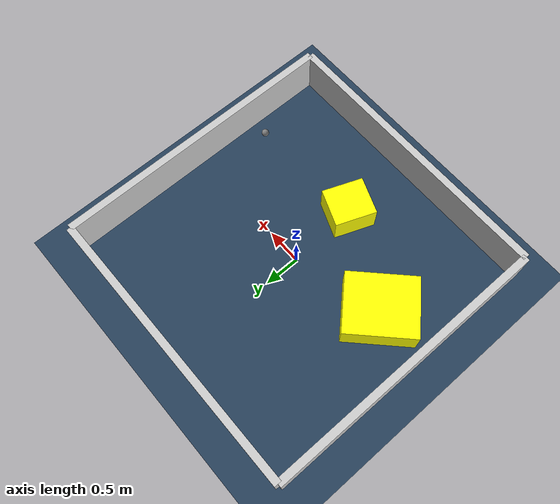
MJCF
<?xml version="1.0" ?>
<mujoco model="generated_environment">
  <option timestep="0.01" integrator="RK4" cone="elliptic"/>
  <default>
    <geom density="1"/>
  </default>
  <asset>
    <texture builtin="gradient" height="3072" rgb1="0.3 0.5 0.7" rgb2="0 0 0" type="skybox" width="512"/>
    <texture builtin="checker" height="300" mark="edge" markrgb="0.8 0.8 0.8" name="groundplane" rgb1="0.2 0.3 0.4" rgb2="0.1 0.2 0.3" type="2d" width="300"/>
    <material name="groundplane" reflectance="0.2" texrepeat="5 5" texture="groundplane" texuniform="true"/>
    <material name="robot" rgba="0.0 1.0 0.0 1"/>
  </asset>
  <worldbody>
    <light dir="0 0 -1" directional="true" pos="0 0 1.5"/>
    <geom condim="4" friction="1.0 0.005 0.001" material="groundplane" name="floor" size="0 0 0.05" type="plane"/>
    <body name="walls">
      <geom name="wall_1" condim="4" pos="-2.0 0.0 0.3" rgba="0.800000011920929 0.800000011920929 0.800000011920929 1.0" size="0.05 2.0 0.3" type="box"/>
      <geom name="wall_2" condim="4" pos="2.0 0.0 0.3" rgba="0.800000011920929 0.800000011920929 0.800000011920929 1.0" size="0.05 2.0 0.3" type="box"/>
      <geom name="wall_3" condim="4" pos="0.0 -2.0 0.3" rgba="0.800000011920929 0.800000011920929 0.800000011920929 1.0" size="2.0 0.05 0.3" type="box"/>
      <geom name="wall_4" condim="4" pos="0.0 2.0 0.3" rgba="0.800000011920929 0.800000011920929 0.800000011920929 1.0" size="2.0 0.05 0.3" type="box"/>
    </body>
    <body name="robot">
      <joint name="joint_x" type="slide" pos="0 0 0" axis="1 0 0"/>
      <joint name="joint_y" type="slide" pos="0 0 0" axis="0 1 0"/>
      <geom name="robot" type="sphere" pos="1.6529869339838363 -0.8692524341264563 0.2" size="0.05" mass="5." friction="1.0 0.005 0.0001" condim="4"/>
      <site name="sensor_ball"/>
    </body>
    <body name="obstacle_1_movable">
      <geom name="obstacle_1_movable" condim="4" pos="-1.2425081344908389 -0.30506685678028345 0.2" euler="0 0 224.37169762366943" friction="1.0 0.005 0.001" rgba="1 1 0 1" size="0.47703063083957936 0.4046754571672023 0.2" type="box" mass="0.1"/>
      <joint type="free"/>
    </body>
    <body name="obstacle_2_movable">
      <geom name="obstacle_2_movable" condim="4" pos="0.04462559271508226 -0.9519625915135079 0.2" euler="0 0 68.4926844618027" friction="1.0 0.005 0.001" rgba="1 1 0 1" size="0.2845167572648509 0.2620390951245806 0.2" type="box" mass="0.1"/>
      <joint type="free"/>
    </body>
  </worldbody>
  <actuator>
    <motor name="actuator_x" joint="joint_x" gear="1" ctrlrange="-1 1"/>
    <motor name="actuator_y" joint="joint_y" gear="1" ctrlrange="-1 1"/>
  </actuator>
</mujoco>
